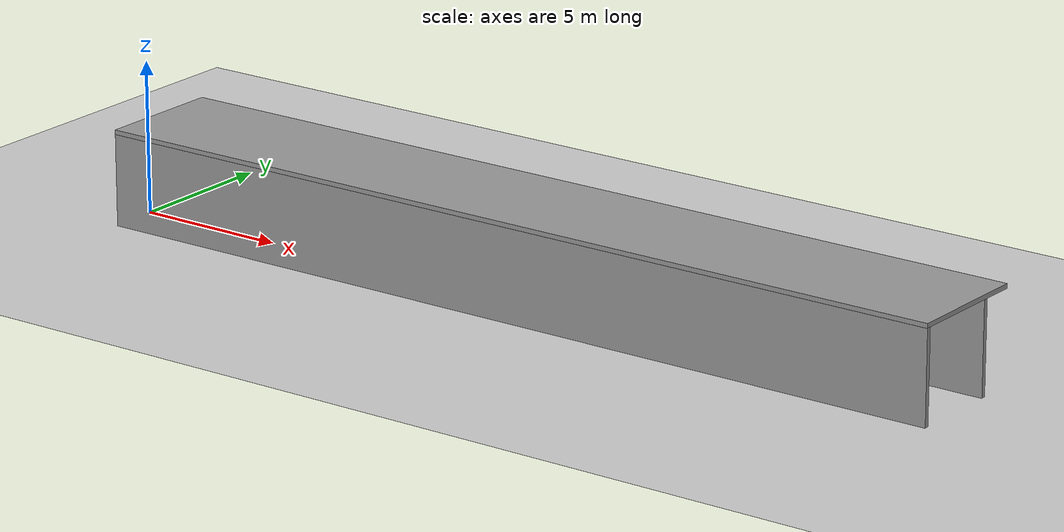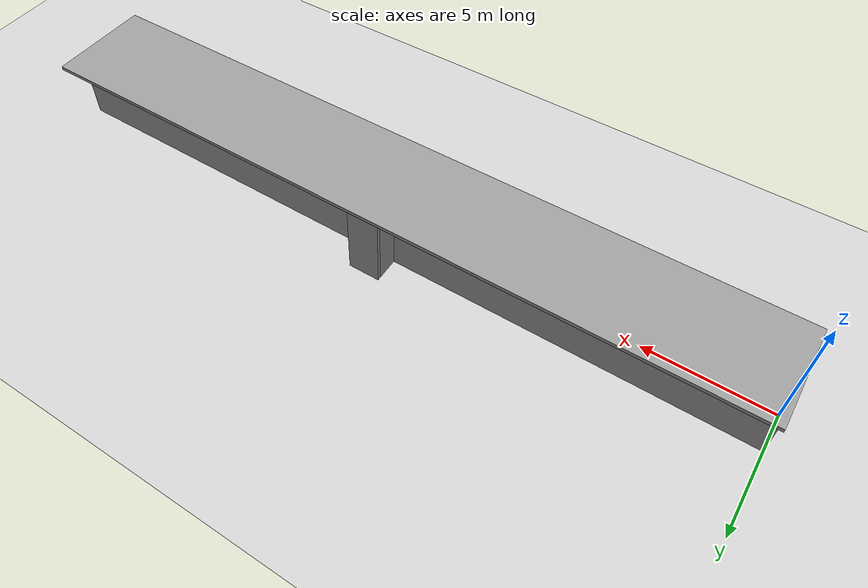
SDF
<?xml version="1.0" ?>
<sdf version="1.5">
  <world name="default">
    <include>
      <uri>model://sun</uri>
    </include>
    <include>
      <uri>model://ground_plane</uri>
    </include>
    <include>
      <uri>model://asphalt_plane</uri>
      <pose>0 0 -0.000001 0 0 0</pose>
    </include>

    <model name='unit_box_0'>
      <pose>15.000 -1.500 1.500 0 0 0</pose>
      <link name='link'>
        <gravity>1</gravity>
        <inertial>
          <mass>10000</mass>
          <inertia>
            <ixx>2000</ixx>
            <ixy>0</ixy>
            <ixz>0</ixz>
            <iyy>2000</iyy>
            <iyz>0</iyz>
            <izz>2000</izz>
          </inertia>
          <pose>0 0 0 0 0 0</pose>
        </inertial>
        <collision name='collision'>
          <geometry>
            <box>
              <size>30.000 0.150 3.000</size>
            </box>
          </geometry>
          <max_contacts>10</max_contacts>
          <surface>
            <contact>
              <ode/>
            </contact>
            <bounce/>
            <friction>
              <torsional>
                <ode/>
              </torsional>
              <ode/>
            </friction>
          </surface>
        </collision>
        <visual name='visual'>
          <geometry>
            <box>
              <size>30.000 0.150 3.000</size>
            </box>
          </geometry>
          <material>
            <script>
              <name>Gazebo/Grey</name>
              <uri>file://media/materials/scripts/gazebo.material</uri>
            </script>
          </material>
        </visual>
      </link>
      <static>1</static>
    </model>

    <model name='unit_box_1'>
      <pose>7.250 1.500 1.500 0 0 0</pose>
      <link name='link'>
        <gravity>1</gravity>
        <inertial>
          <mass>10000</mass>
          <inertia>
            <ixx>2000</ixx>
            <ixy>0</ixy>
            <ixz>0</ixz>
            <iyy>2000</iyy>
            <iyz>0</iyz>
            <izz>2000</izz>
          </inertia>
          <pose>0 0 0 0 0 0</pose>
        </inertial>
        <collision name='collision'>
          <geometry>
            <box>
              <size>14.500 0.150 3.000</size>
            </box>
          </geometry>
          <max_contacts>10</max_contacts>
          <surface>
            <contact>
              <ode/>
            </contact>
            <bounce/>
            <friction>
              <torsional>
                <ode/>
              </torsional>
              <ode/>
            </friction>
          </surface>
        </collision>
        <visual name='visual'>
          <geometry>
            <box>
              <size>14.500 0.150 3.000</size>
            </box>
          </geometry>
          <material>
            <script>
              <name>Gazebo/Grey</name>
              <uri>file://media/materials/scripts/gazebo.material</uri>
            </script>
          </material>
        </visual>
      </link>
      <static>1</static>
    </model>

    <model name='unit_box_2'>
      <pose>22.750 1.500 1.500 0 0 0</pose>
      <link name='link'>
        <gravity>1</gravity>
        <inertial>
          <mass>10000</mass>
          <inertia>
            <ixx>2000</ixx>
            <ixy>0</ixy>
            <ixz>0</ixz>
            <iyy>2000</iyy>
            <iyz>0</iyz>
            <izz>2000</izz>
          </inertia>
          <pose>0 0 0 0 0 0</pose>
        </inertial>
        <collision name='collision'>
          <geometry>
            <box>
              <size>14.500 0.150 3.000</size>
            </box>
          </geometry>
          <max_contacts>10</max_contacts>
          <surface>
            <contact>
              <ode/>
            </contact>
            <bounce/>
            <friction>
              <torsional>
                <ode/>
              </torsional>
              <ode/>
            </friction>
          </surface>
        </collision>
        <visual name='visual'>
          <geometry>
            <box>
              <size>14.500 0.150 3.000</size>
            </box>
          </geometry>
          <material>
            <script>
              <name>Gazebo/Grey</name>
              <uri>file://media/materials/scripts/gazebo.material</uri>
            </script>
          </material>
        </visual>
      </link>
      <static>1</static>
    </model>

    <model name='unit_box_3'>
      <pose>14.425 2.000 1.500 0 0 0</pose>
      <link name='link'>
        <gravity>1</gravity>
        <inertial>
          <mass>10000</mass>
          <inertia>
            <ixx>2000</ixx>
            <ixy>0</ixy>
            <ixz>0</ixz>
            <iyy>2000</iyy>
            <iyz>0</iyz>
            <izz>2000</izz>
          </inertia>
          <pose>0 0 0 0 0 0</pose>
        </inertial>
        <collision name='collision'>
          <geometry>
            <box>
              <size>0.150 1.000 3.000</size>
            </box>
          </geometry>
          <max_contacts>10</max_contacts>
          <surface>
            <contact>
              <ode/>
            </contact>
            <bounce/>
            <friction>
              <torsional>
                <ode/>
              </torsional>
              <ode/>
            </friction>
          </surface>
        </collision>
        <visual name='visual'>
          <geometry>
            <box>
              <size>0.150 1.000 3.000</size>
            </box>
          </geometry>
          <material>
            <script>
              <name>Gazebo/Grey</name>
              <uri>file://media/materials/scripts/gazebo.material</uri>
            </script>
          </material>
        </visual>
      </link>
      <static>1</static>
    </model>

    <model name='unit_box_4'>
      <pose>15.575 2.000 1.500 0 0 0</pose>
      <link name='link'>
        <gravity>1</gravity>
        <inertial>
          <mass>10000</mass>
          <inertia>
            <ixx>2000</ixx>
            <ixy>0</ixy>
            <ixz>0</ixz>
            <iyy>2000</iyy>
            <iyz>0</iyz>
            <izz>2000</izz>
          </inertia>
          <pose>0 0 0 0 0 0</pose>
        </inertial>
        <collision name='collision'>
          <geometry>
            <box>
              <size>0.150 1.000 3.000</size>
            </box>
          </geometry>
          <max_contacts>10</max_contacts>
          <surface>
            <contact>
              <ode/>
            </contact>
            <bounce/>
            <friction>
              <torsional>
                <ode/>
              </torsional>
              <ode/>
            </friction>
          </surface>
        </collision>
        <visual name='visual'>
          <geometry>
            <box>
              <size>0.150 1.000 3.000</size>
            </box>
          </geometry>
          <material>
            <script>
              <name>Gazebo/Grey</name>
              <uri>file://media/materials/scripts/gazebo.material</uri>
            </script>
          </material>
        </visual>
      </link>
      <static>1</static>
    </model>

    <model name='unit_box_5'>
      <pose>15.000 2.575 1.500 0 0 0</pose>
      <link name='link'>
        <gravity>1</gravity>
        <inertial>
          <mass>10000</mass>
          <inertia>
            <ixx>2000</ixx>
            <ixy>0</ixy>
            <ixz>0</ixz>
            <iyy>2000</iyy>
            <iyz>0</iyz>
            <izz>2000</izz>
          </inertia>
          <pose>0 0 0 0 0 0</pose>
        </inertial>
        <collision name='collision'>
          <geometry>
            <box>
              <size>1.300 0.150 3.000</size>
            </box>
          </geometry>
          <max_contacts>10</max_contacts>
          <surface>
            <contact>
              <ode/>
            </contact>
            <bounce/>
            <friction>
              <torsional>
                <ode/>
              </torsional>
              <ode/>
            </friction>
          </surface>
        </collision>
        <visual name='visual'>
          <geometry>
            <box>
              <size>1.300 0.150 3.000</size>
            </box>
          </geometry>
          <material>
            <script>
              <name>Gazebo/Grey</name>
              <uri>file://media/materials/scripts/gazebo.material</uri>
            </script>
          </material>
        </visual>
      </link>
      <static>1</static>
    </model>

    <model name='unit_box_6'>
      <pose>15.000 0.537 3.075 0 0 0</pose>
      <link name='link'>
        <gravity>1</gravity>
        <inertial>
          <mass>10000</mass>
          <inertia>
            <ixx>2000</ixx>
            <ixy>0</ixy>
            <ixz>0</ixz>
            <iyy>2000</iyy>
            <iyz>0</iyz>
            <izz>2000</izz>
          </inertia>
          <pose>0 0 0 0 0 0</pose>
        </inertial>
        <collision name='collision'>
          <geometry>
            <box>
              <size>30.000 4.225 0.150</size>
            </box>
          </geometry>
          <max_contacts>10</max_contacts>
          <surface>
            <contact>
              <ode/>
            </contact>
            <bounce/>
            <friction>
              <torsional>
                <ode/>
              </torsional>
              <ode/>
            </friction>
          </surface>
        </collision>
        <visual name='visual'>
          <geometry>
            <box>
              <size>30.000 4.225 0.150</size>
            </box>
          </geometry>
          <material>
            <script>
              <name>Gazebo/Grey</name>
              <uri>file://media/materials/scripts/gazebo.material</uri>
            </script>
          </material>
        </visual>
      </link>
      <static>1</static>
    </model>

    <model name='sudden_appear_object'>
      <pose>15.00000 2.00000 1.50000 0 0 0</pose>
      <link name='link'>
        <gravity>0</gravity>
        <inertial>
          <mass>10000</mass>
          <inertia>
            <ixx>2000</ixx>
            <ixy>0</ixy>
            <ixz>0</ixz>
            <iyy>2000</iyy>
            <iyz>0</iyz>
            <izz>2000</izz>
          </inertia>
          <pose>0 0 0 0 0 0</pose>
        </inertial>
        <collision name='collision'>
          <geometry>
            <box>
              <size>0.500 0.500 3.000</size>
            </box>
          </geometry>
          <max_contacts>10</max_contacts>
          <surface>
            <contact>
              <ode/>
            </contact>
            <bounce/>
            <friction>
              <torsional>
                <ode/>
              </torsional>
              <ode/>
            </friction>
          </surface>
        </collision>
        <visual name='visual'>
          <geometry>
            <box>
              <size>0.500 0.500 3.000</size>
            </box>
          </geometry>
          <material>
            <script>
              <name>Gazebo/Blue</name>
              <uri>file://media/materials/scripts/gazebo.material</uri>
            </script>
          </material>
        </visual>
        <kinematic>1</kinematic>
      </link>
      <static>0</static>
      <plugin name='sudden_appear_motion' filename='libobstaclePathPlugin.so'>
        <motion_type>sudden_appear</motion_type>
        <activation_model>quad0</activation_model>
        <trigger_distance>4.000000000</trigger_distance>
        <direction>0.000000000 -1.000000000 0.000000000</direction>
        <velocity>5.000000000</velocity>
        <travel_distance>2.000000000</travel_distance>
        <marker_enabled>true</marker_enabled>
        <marker_id>0</marker_id>
        <marker_shape>box</marker_shape>
        <marker_size>0.500000000 0.500000000 3.000000000</marker_size>
        <marker_rate>20.0</marker_rate>
        <marker_topic>/uav_simulator/dynamic_obstacles</marker_topic>
        <marker_frame>map</marker_frame>
      </plugin>
    </model>
        <physics name="default_physics" default="0" type="ode">
      <gravity>0 0 -9.8066</gravity>
      <ode>
        <solver>
          <type>quick</type>
          <iters>10</iters>
          <sor>1.3</sor>
          <use_dynamic_moi_rescaling>0</use_dynamic_moi_rescaling>
        </solver>
        <constraints>
          <cfm>0</cfm>
          <erp>0.2</erp>
          <contact_max_correcting_vel>100</contact_max_correcting_vel>
          <contact_surface_layer>0.001</contact_surface_layer>
        </constraints>
      </ode>
      <max_step_size>0.004</max_step_size>
      <real_time_factor>1</real_time_factor>
      <real_time_update_rate>250</real_time_update_rate>
      <magnetic_field>6.0e-6 2.3e-5 -4.2e-5</magnetic_field>
    </physics>
  </world>
</sdf>
